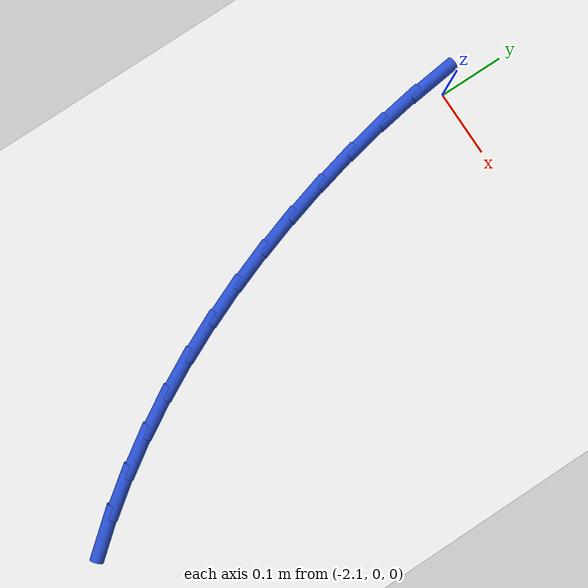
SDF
<sdf version="1.6">
 <world name="default">
  <model name="ground_plane">
   <static>1</static>
   <link name="link">
    <collision name="collision">
     <geometry><plane><normal>0 0 1</normal><size>100 100</size></plane></geometry>
     <surface><friction><ode><mu>100</mu><mu2>50</mu2></ode></friction></surface>
    </collision>
    <visual name="visual">
     <cast_shadows>0</cast_shadows>
     <geometry><plane><normal>0 0 1</normal><size>100 100</size></plane></geometry>
     <material>
      <script><uri>file://media/materials/scripts/gazebo.material</uri><name>Gazebo/WhiteGlow</name></script>
     </material>
    </visual>
   </link>
  </model>
  <model name="line">
   <link name="link_55">
    <pose>-2.1247021021861627 -0.004722877508081917 0.01 0 1.57 -1.4538902197780765</pose>
    <collision name="collision">
     <geometry><cylinder><radius>0.01</radius><length>0.08</length></cylinder></geometry>
    </collision>
    <visual name="visual">
     <material>
      <script><name>Gazebo/Blue</name><uri>file://media/materials/scripts/gazebo.material</uri></script>
     </material>
     <geometry><cylinder><radius>0.01</radius><length>0.08</length></cylinder></geometry>
    </visual>
   </link>
   <link name="link_56">
    <pose>-2.1174873956499654 -0.06615515717416869 0.01 0 1.57 -1.4089904967041538</pose>
    <collision name="collision">
     <geometry><cylinder><radius>0.01</radius><length>0.08</length></cylinder></geometry>
    </collision>
    <visual name="visual">
     <material>
      <script><name>Gazebo/Blue</name><uri>file://media/materials/scripts/gazebo.material</uri></script>
     </material>
     <geometry><cylinder><radius>0.01</radius><length>0.08</length></cylinder></geometry>
    </visual>
   </link>
   <link name="link_57">
    <pose>-2.10748678995873 -0.12742104150618902 0.01 0 1.57 -1.366854233685176</pose>
    <collision name="collision">
     <geometry><cylinder><radius>0.01</radius><length>0.08</length></cylinder></geometry>
    </collision>
    <visual name="visual">
     <material>
      <script><name>Gazebo/Blue</name><uri>file://media/materials/scripts/gazebo.material</uri></script>
     </material>
     <geometry><cylinder><radius>0.01</radius><length>0.08</length></cylinder></geometry>
    </visual>
   </link>
   <link name="link_58">
    <pose>-2.0948935507627966 -0.1883116536861213 0.01 0 1.57 -1.3271291804733696</pose>
    <collision name="collision">
     <geometry><cylinder><radius>0.01</radius><length>0.08</length></cylinder></geometry>
    </collision>
    <visual name="visual">
     <material>
      <script><name>Gazebo/Blue</name><uri>file://media/materials/scripts/gazebo.material</uri></script>
     </material>
     <geometry><cylinder><radius>0.01</radius><length>0.08</length></cylinder></geometry>
    </visual>
   </link>
   <link name="link_59">
    <pose>-2.079900943712503 -0.24861811689594665 0.01 0 1.57 -1.2894695924481856</pose>
    <collision name="collision">
     <geometry><cylinder><radius>0.01</radius><length>0.08</length></cylinder></geometry>
    </collision>
    <visual name="visual">
     <material>
      <script><name>Gazebo/Blue</name><uri>file://media/materials/scripts/gazebo.material</uri></script>
     </material>
     <geometry><cylinder><radius>0.01</radius><length>0.08</length></cylinder></geometry>
    </visual>
   </link>
   <link name="link_60">
    <pose>-2.0627020601478554 -0.3081316135373391 0.01 0 1.57 -1.2525657114072972</pose>
    <collision name="collision">
     <geometry><cylinder><radius>0.01</radius><length>0.08</length></cylinder></geometry>
    </collision>
    <visual name="visual">
     <material>
      <script><name>Gazebo/Blue</name><uri>file://media/materials/scripts/gazebo.material</uri></script>
     </material>
     <geometry><cylinder><radius>0.01</radius><length>0.08</length></cylinder></geometry>
    </visual>
   </link>
   <link name="link_61">
    <pose>-2.0434187582798593 -0.3666675265519521 0.01 0 1.57 -1.2137337427688117</pose>
    <collision name="collision">
     <geometry><cylinder><radius>0.01</radius><length>0.08</length></cylinder></geometry>
    </collision>
    <visual name="visual">
     <material>
      <script><name>Gazebo/Blue</name><uri>file://media/materials/scripts/gazebo.material</uri></script>
     </material>
     <geometry><cylinder><radius>0.01</radius><length>0.08</length></cylinder></geometry>
    </visual>
   </link>
   <link name="link_62">
    <pose>-2.0219924561239564 -0.42410254111857837 0.01 0 1.57 -1.172511223567426</pose>
    <collision name="collision">
     <geometry><cylinder><radius>0.01</radius><length>0.08</length></cylinder></geometry>
    </collision>
    <visual name="visual">
     <material>
      <script><name>Gazebo/Blue</name><uri>file://media/materials/scripts/gazebo.material</uri></script>
     </material>
     <geometry><cylinder><radius>0.01</radius><length>0.08</length></cylinder></geometry>
    </visual>
   </link>
   <link name="link_63">
    <pose>-1.998336432607048 -0.4803229023096573 0.01 0 1.57 -1.1288534684229687</pose>
    <collision name="collision">
     <geometry><cylinder><radius>0.01</radius><length>0.08</length></cylinder></geometry>
    </collision>
    <visual name="visual">
     <material>
      <script><name>Gazebo/Blue</name><uri>file://media/materials/scripts/gazebo.material</uri></script>
     </material>
     <geometry><cylinder><radius>0.01</radius><length>0.08</length></cylinder></geometry>
    </visual>
   </link>
   <link name="link_64">
    <pose>-1.9723639666560369 -0.535214855197625 0.01 0 1.57 -1.0827479866015863</pose>
    <collision name="collision">
     <geometry><cylinder><radius>0.01</radius><length>0.08</length></cylinder></geometry>
    </collision>
    <visual name="visual">
     <material>
      <script><name>Gazebo/Blue</name><uri>file://media/materials/scripts/gazebo.material</uri></script>
     </material>
     <geometry><cylinder><radius>0.01</radius><length>0.08</length></cylinder></geometry>
    </visual>
   </link>
   <link name="link_65">
    <pose>-1.9439883371978233 -0.5886646448549199 0.01 0 1.57 -1.0342228043084765</pose>
    <collision name="collision">
     <geometry><cylinder><radius>0.01</radius><length>0.08</length></cylinder></geometry>
    </collision>
    <visual name="visual">
     <material>
      <script><name>Gazebo/Blue</name><uri>file://media/materials/scripts/gazebo.material</uri></script>
     </material>
     <geometry><cylinder><radius>0.01</radius><length>0.08</length></cylinder></geometry>
    </visual>
   </link>
   <link name="link_66">
    <pose>-1.9131228231593085 -0.6405585163539803 0.01 0 1.57 -0.9833546697153894</pose>
    <collision name="collision">
     <geometry><cylinder><radius>0.01</radius><length>0.08</length></cylinder></geometry>
    </collision>
    <visual name="visual">
     <material>
      <script><name>Gazebo/Blue</name><uri>file://media/materials/scripts/gazebo.material</uri></script>
     </material>
     <geometry><cylinder><radius>0.01</radius><length>0.08</length></cylinder></geometry>
    </visual>
   </link>
   <link name="link_67">
    <pose>-1.8796807034673952 -0.6907827147672425 0.01 0 1.57 -0.9302762977981415</pose>
    <collision name="collision">
     <geometry><cylinder><radius>0.01</radius><length>0.08</length></cylinder></geometry>
    </collision>
    <visual name="visual">
     <material>
      <script><name>Gazebo/Blue</name><uri>file://media/materials/scripts/gazebo.material</uri></script>
     </material>
     <geometry><cylinder><radius>0.01</radius><length>0.08</length></cylinder></geometry>
    </visual>
   </link>
   <link name="link_68">
    <pose>-1.8435752570489847 -0.7392234851671455 0.01 0 1.57 -0.8751816118877479</pose>
    <collision name="collision">
     <geometry><cylinder><radius>0.01</radius><length>0.08</length></cylinder></geometry>
    </collision>
    <visual name="visual">
     <material>
      <script><name>Gazebo/Blue</name><uri>file://media/materials/scripts/gazebo.material</uri></script>
     </material>
     <geometry><cylinder><radius>0.01</radius><length>0.08</length></cylinder></geometry>
    </visual>
   </link>
  </model>
 </world>
</sdf>
